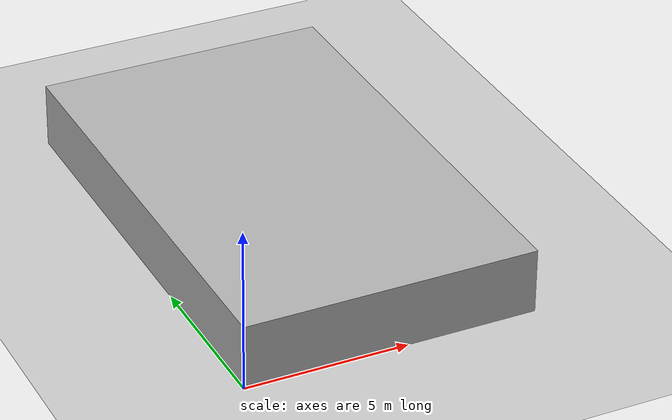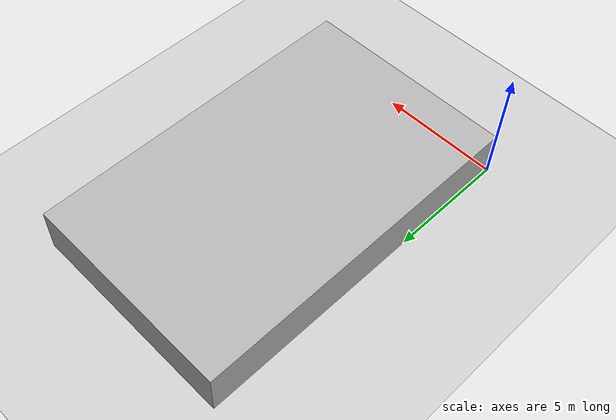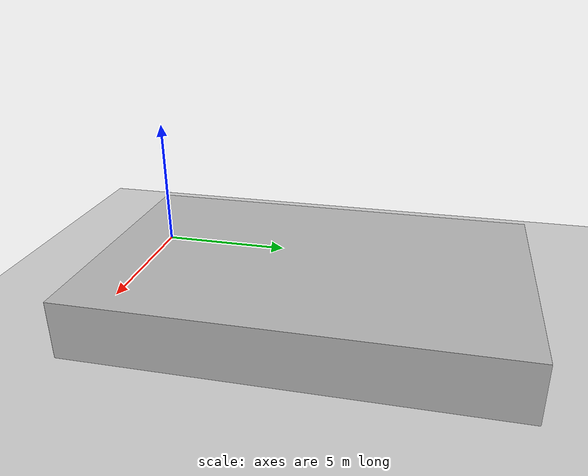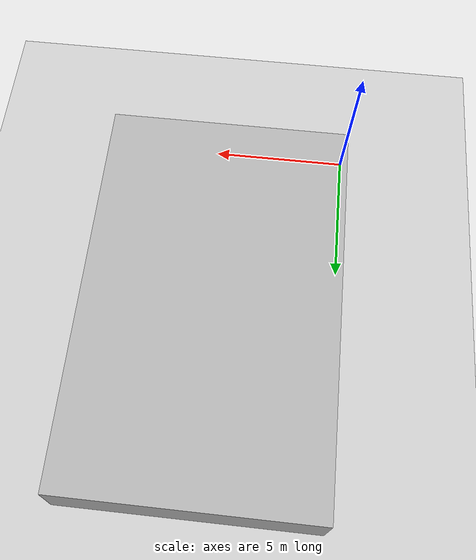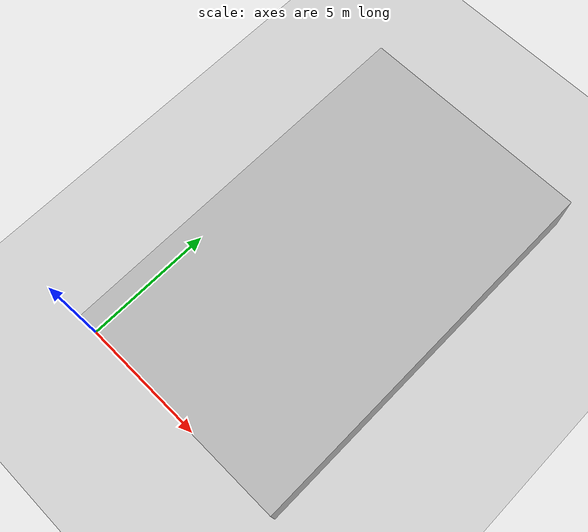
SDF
<?xml version="1.0" ?>
<sdf version="1.6">
  <world name="slam_world">
    <light name="sun" type="directional">
      <pose>0 0 10 0 0 0</pose>
      <diffuse>0.8 0.8 0.8 1</diffuse>
      <direction>-0.5 0.1 -0.9</direction>
    </light>
    <model name="ground_plane">
      <static>true</static>
      <link name="link">
        <collision name="collision">
          <geometry>
            <plane>
              <normal>0 0 1</normal>
              <size>100 100</size>
            </plane>
          </geometry>
        </collision>
        <visual name="visual">
          <geometry>
            <plane>
              <normal>0 0 1</normal>
              <size>100 100</size>
            </plane>
          </geometry>
          <material>
            <ambient>0.8 0.8 0.8 1</ambient>
            <diffuse>0.8 0.8 0.8 1</diffuse>
            <specular>0.8 0.8 0.8 1</specular>
          </material>
        </visual>
      </link>
    </model>
    <model name="wall_0">
      <static>true</static>
      <pose>4.500000000000001 7.250000000000002 1.0 0 0 0</pose>
      <link name="link">
        <collision name="collision">
          <geometry>
            <box>
              <size>9.000000000000002 14.500000000000004 2.0</size>
            </box>
          </geometry>
        </collision>
        <visual name="visual">
          <geometry>
            <box>
              <size>9.000000000000002 14.500000000000004 2.0</size>
            </box>
          </geometry>
          <material>
            <ambient>0.5 0.5 0.5 1</ambient>
            <diffuse>0.7 0.7 0.7 1</diffuse>
          </material>
        </visual>
      </link>
    </model>
  </world>
</sdf>
